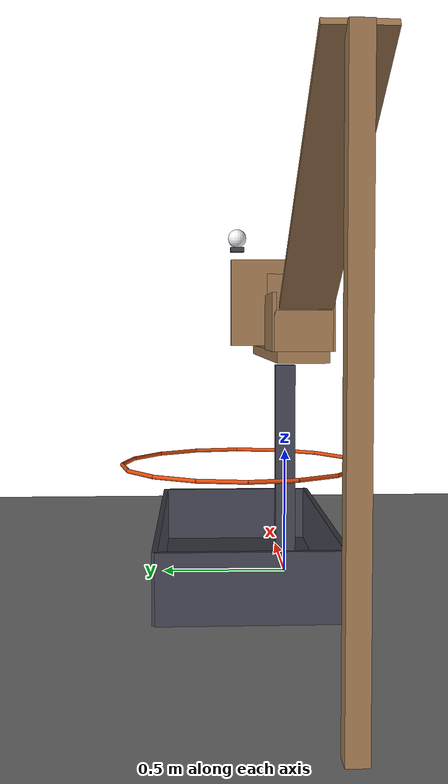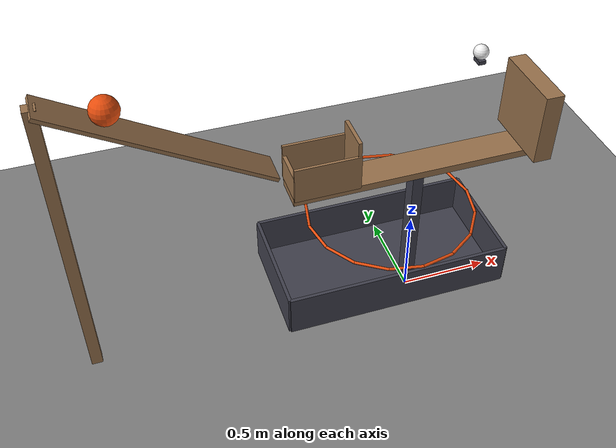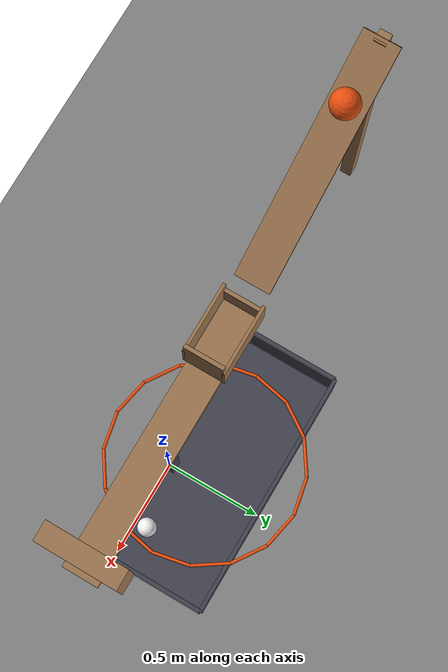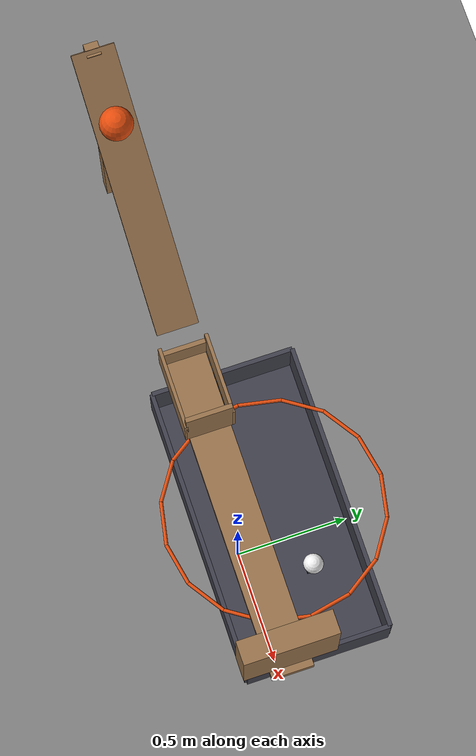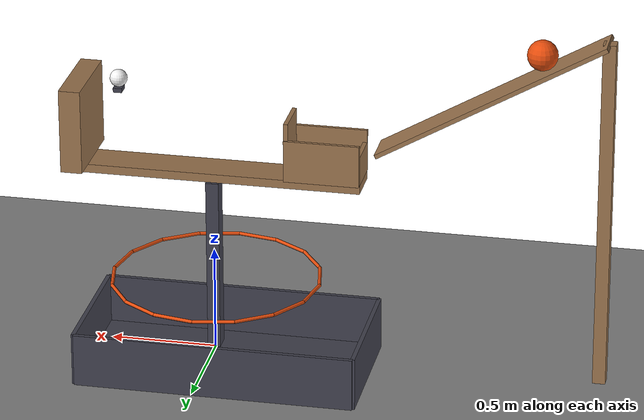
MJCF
<mujoco model="recessed_balance_and_drop_hoop">
  <compiler angle="radian"/>
  <option timestep="0.002"/>
  <worldbody>
    <geom name="floor" type="plane" size="6 6 0.1" friction="0.8 0.005 0.002"/>
    <body name="pivot stand">
      <geom name="pivot stand" type="box" pos="0 0 0.425" size="0.03 0.04 0.425" rgba="0.25 0.25 0.3 1"/>
    </body>
    <body name="ramp">
      <geom name="ramp_deck" type="box" pos="-1.28961 0 1.37" size="0.6 0.09 0.01" euler="0 0.523599 0" friction="0.8 0.005 0.002" rgba="0.6 0.45 0.3 1"/>
      <geom name="ramp_leg" type="box" pos="-1.80923 0 0.835" size="0.03 0.03 0.835" friction="0.8 0.005 0.002" rgba="0.6 0.45 0.3 1"/>
    </body>
    <body name="balance" pos="0 0 0.9">
      <joint name="balance_hinge" type="hinge" pos="0 0 0" axis="0 1 0" limited="true" range="-0.436332 0" stiffness="1" springref="0" damping="0.5" armature="0.01"/>
      <geom name="balance" type="box" pos="0 0 0" size="0.7 0.09 0.02" mass="0.3" friction="0.9 0.01 0.004" solref="0.01 1" rgba="0.6 0.45 0.3 1"/>
      <geom name="receiver entrance" type="box" pos="-0.69 0 0.09" size="0.01 0.1 0.07" mass="0.01" solref="0.01 1" rgba="0.6 0.45 0.3 1"/>
      <geom name="receiver back" type="box" pos="-0.36 0 0.16" size="0.01 0.1 0.14" mass="0.01" solref="0.01 1" rgba="0.6 0.45 0.3 1"/>
      <geom name="receiver left" type="box" pos="-0.525 0.1 0.12" size="0.175 0.0075 0.1" mass="0.01" solref="0.01 1" rgba="0.6 0.45 0.3 1"/>
      <geom name="receiver right" type="box" pos="-0.525 -0.1 0.12" size="0.175 0.0075 0.1" mass="0.01" solref="0.01 1" rgba="0.6 0.45 0.3 1"/>
    </body>
    <body name="ball1" pos="-1.50942 0 1.58928">
      <freejoint/>
      <geom name="ball1" type="sphere" pos="0 0 0" size="0.07" mass="1.2" condim="6" friction="0.8 0.01 0.003" solref="0.01 1" rgba="0.9 0.3 0.05 1"/>
    </body>
    <body name="block" pos="0.62 0 1.12">
      <freejoint/>
      <geom name="block" type="box" pos="0 0 0" size="0.05 0.2 0.2" mass="0.15" friction="1.2 0.01 0.004" solref="0.01 1" rgba="0.6 0.45 0.3 1"/>
    </body>
    <body name="ball2 perch">
      <geom name="ball2 perch" type="box" pos="0.39 0.18 1.35" size="0.02 0.03 0.01" rgba="0.25 0.25 0.3 1"/>
    </body>
    <body name="ball2" pos="0.39 0.18 1.4">
      <freejoint/>
      <geom name="ball2" type="sphere" pos="0 0 0" size="0.04" mass="0.04" condim="6" friction="0.5 0.01 0.004" solref="0.01 1" rgba="0.95 0.95 0.95 1"/>
    </body>
    <body name="hoop">
      <geom name="hoop_00" type="capsule" size="0.008" fromto="0.433 0.18 0.45 0.396234 0.364836 0.45" rgba="0.9 0.3 0.05 1"/>
      <geom name="hoop_01" type="capsule" size="0.008" fromto="0.396234 0.364836 0.45 0.291533 0.521533 0.45" rgba="0.9 0.3 0.05 1"/>
      <geom name="hoop_02" type="capsule" size="0.008" fromto="0.291533 0.521533 0.45 0.134836 0.626234 0.45" rgba="0.9 0.3 0.05 1"/>
      <geom name="hoop_03" type="capsule" size="0.008" fromto="0.134836 0.626234 0.45 -0.05 0.663 0.45" rgba="0.9 0.3 0.05 1"/>
      <geom name="hoop_04" type="capsule" size="0.008" fromto="-0.05 0.663 0.45 -0.234836 0.626234 0.45" rgba="0.9 0.3 0.05 1"/>
      <geom name="hoop_05" type="capsule" size="0.008" fromto="-0.234836 0.626234 0.45 -0.391533 0.521533 0.45" rgba="0.9 0.3 0.05 1"/>
      <geom name="hoop_06" type="capsule" size="0.008" fromto="-0.391533 0.521533 0.45 -0.496234 0.364836 0.45" rgba="0.9 0.3 0.05 1"/>
      <geom name="hoop_07" type="capsule" size="0.008" fromto="-0.496234 0.364836 0.45 -0.533 0.18 0.45" rgba="0.9 0.3 0.05 1"/>
      <geom name="hoop_08" type="capsule" size="0.008" fromto="-0.533 0.18 0.45 -0.496234 -0.0048361 0.45" rgba="0.9 0.3 0.05 1"/>
      <geom name="hoop_09" type="capsule" size="0.008" fromto="-0.496234 -0.0048361 0.45 -0.391533 -0.161533 0.45" rgba="0.9 0.3 0.05 1"/>
      <geom name="hoop_10" type="capsule" size="0.008" fromto="-0.391533 -0.161533 0.45 -0.234836 -0.266234 0.45" rgba="0.9 0.3 0.05 1"/>
      <geom name="hoop_11" type="capsule" size="0.008" fromto="-0.234836 -0.266234 0.45 -0.05 -0.303 0.45" rgba="0.9 0.3 0.05 1"/>
      <geom name="hoop_12" type="capsule" size="0.008" fromto="-0.05 -0.303 0.45 0.134836 -0.266234 0.45" rgba="0.9 0.3 0.05 1"/>
      <geom name="hoop_13" type="capsule" size="0.008" fromto="0.134836 -0.266234 0.45 0.291533 -0.161533 0.45" rgba="0.9 0.3 0.05 1"/>
      <geom name="hoop_14" type="capsule" size="0.008" fromto="0.291533 -0.161533 0.45 0.396234 -0.0048361 0.45" rgba="0.9 0.3 0.05 1"/>
      <geom name="hoop_15" type="capsule" size="0.008" fromto="0.396234 -0.0048361 0.45 0.433 0.18 0.45" rgba="0.9 0.3 0.05 1"/>
    </body>
    <body name="cup">
      <geom name="cup_base" type="box" pos="-0.1 0.18 0.01" size="0.65 0.325 0.01" friction="1 0.02 0.01" solref="0.01 1" rgba="0.25 0.25 0.3 1"/>
      <geom name="cup_near_wall" type="box" pos="-0.75 0.18 0.125" size="0.01 0.325 0.125" friction="1 0.02 0.01" solref="0.01 1" rgba="0.25 0.25 0.3 1"/>
      <geom name="cup_far_wall" type="box" pos="0.55 0.18 0.125" size="0.01 0.325 0.125" friction="1 0.02 0.01" solref="0.01 1" rgba="0.25 0.25 0.3 1"/>
      <geom name="cup_left_wall" type="box" pos="-0.1 0.505 0.125" size="0.65 0.01 0.125" friction="1 0.02 0.01" solref="0.01 1" rgba="0.25 0.25 0.3 1"/>
      <geom name="cup_right_wall" type="box" pos="-0.1 -0.145 0.125" size="0.65 0.01 0.125" friction="1 0.02 0.01" solref="0.01 1" rgba="0.25 0.25 0.3 1"/>
    </body>
  </worldbody>
  <keyframe>
    <key name="start" qpos="0 -1.50942 0 1.58928 1 0 0 0 0.62 0 1.12 1 0 0 0 0.39 0.18 1.4 1 0 0 0" qvel="0 0 0 0 0 0 0 0 0 0 0 0 0 0 0 0 0 0 0"/>
  </keyframe>
</mujoco>
